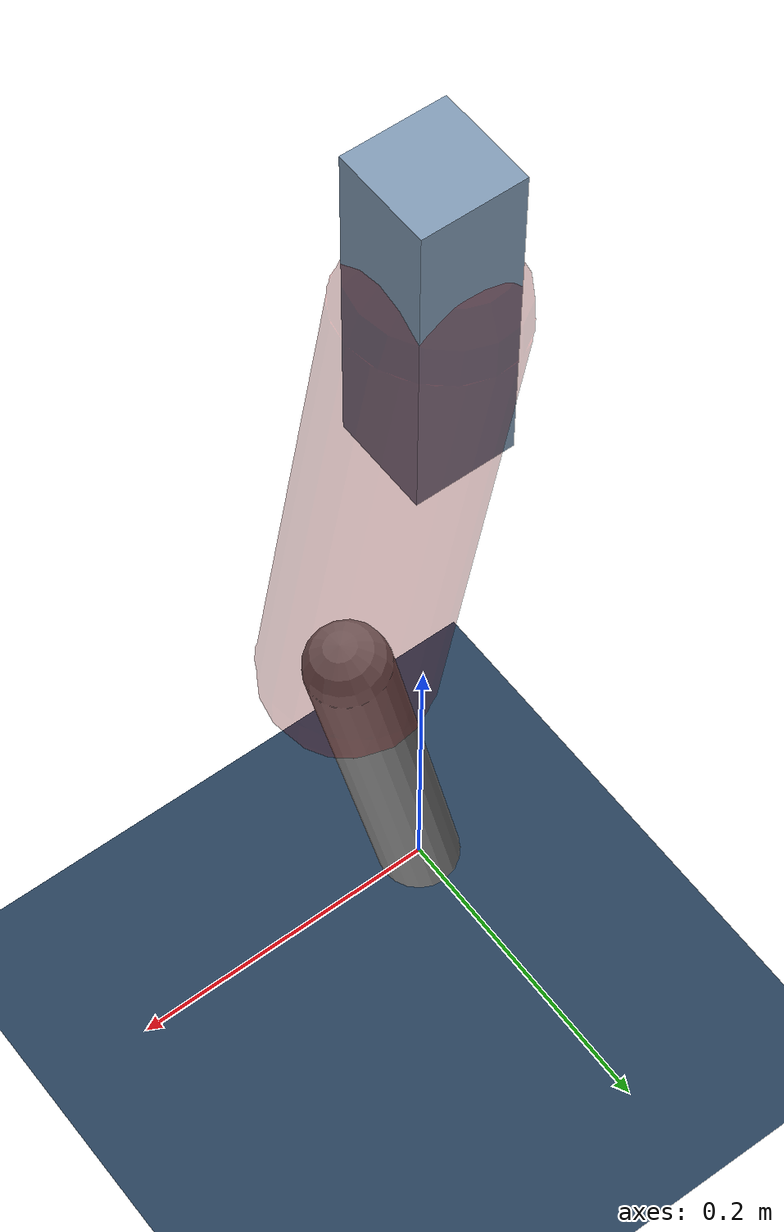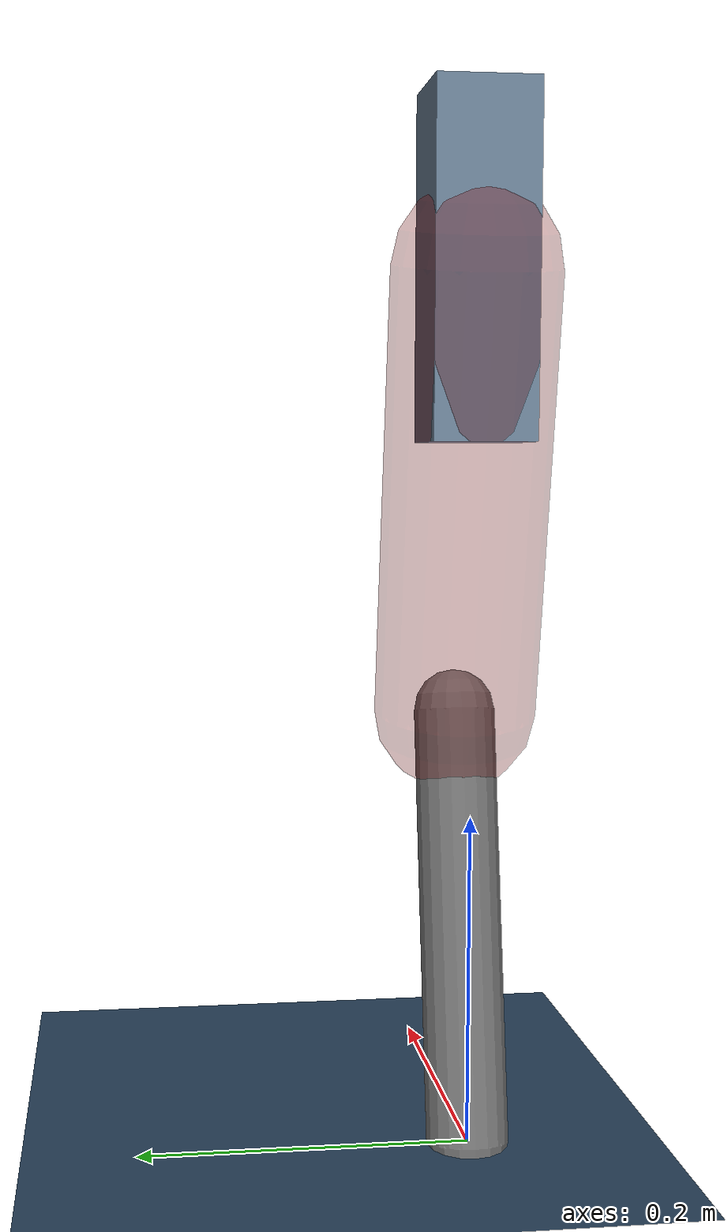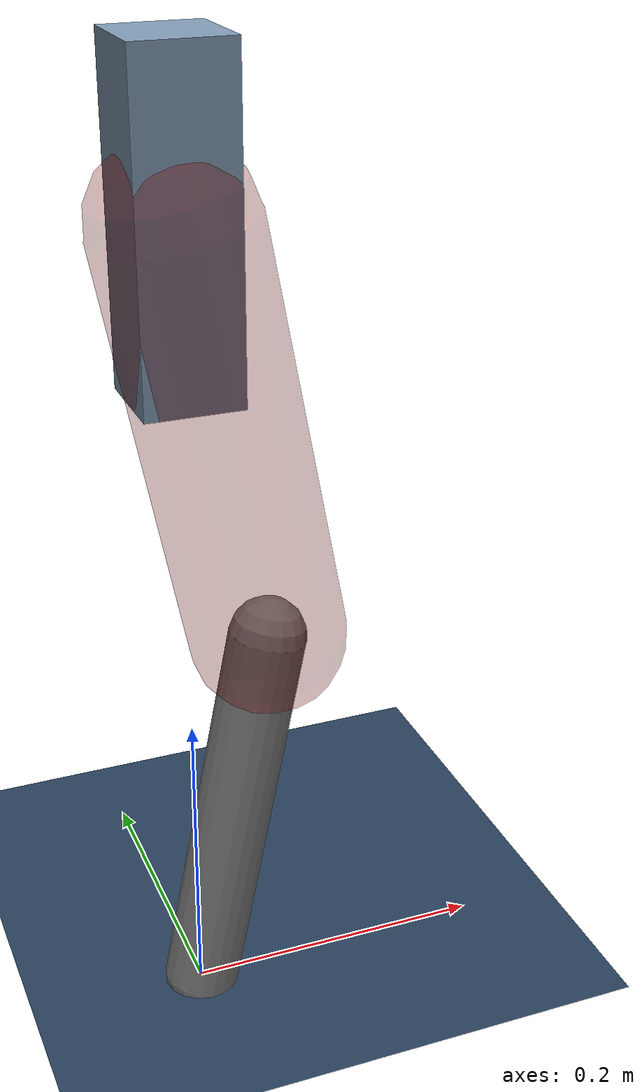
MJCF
<mujoco model="Hopper2D">
	<compiler inertiafromgeom="true" angle="radian" />
	<option timestep="0.001" integrator="implicit" cone="elliptic" solver="Newton" tolerance="1e-10" />

	<default>
		<geom contype="1" conaffinity="1" condim="3" friction="2 0.005 0.0001" solref="0.005 1" />
		<joint limited="true" damping="0.1" />
	</default>

	<asset>
		<texture name="skybox" type="skybox" builtin="gradient" rgb1=".4 .6 .8" rgb2="0 0 0" width="800" height="800" />
		<texture name="grid" type="2d" builtin="checker" rgb1=".1 .2 .3" rgb2=".2 .3 .4" width="300" height="300" mark="edge" markrgb=".2 .3 .4" />
		<material name="ground" texture="grid" texrepeat="1 1" texuniform="true" reflectance="0.1" />
		<material name="leg" rgba="0.5 0.6 0.7 1" />
	</asset>

	<worldbody>

		<geom name="floor" type="plane" size="5 5 0.25" material="ground" />

		<light directional="false" diffuse="0.8 0.8 0.8" specular="0.3 0.3 0.3" pos="0 0 2" dir="0 0 -1" />
		<light mode="targetbodycom" target="base" directional="false" diffuse="0.8 0.8 0.8" specular="0.3 0.3 0.3" pos="0 0 2" dir="0 0 -1" />

		<camera name="fixed" pos="0 -2 1" xyaxes="1 0 0 0 0 1" />
		<camera name="tracking" mode="trackcom" pos="0 -3 1" />

		<body name="root" pos="0 0 0.5219870976805515">
			<joint name="slide_x" type="slide" axis="1 0 0" range="-100 100" />
			<joint name="slide_z" type="slide" axis="0 0 1" range="0 10" />

			<body name="base" pos="0 0 0">
				<geom name="torso" type="box" size="0.03 0.03 0.1" mass="3.036" material="leg" />

				<body name="link1" pos="0 0 0" euler="0 1.3787925263186962 0">
					<joint type="hinge" axis="0 -1 0" pos="0 0 0" name="hinge1" limited="true" range="-3.14 3.14" stiffness="0" damping="0.1" />
					<geom name="thigh" type="capsule" fromto="0 0 0 0.2689790469053226 0 0" size="0.05" rgba="0.5 0 0 0.3" mass="0.9059455219538387" />

					<body name="link2" pos="0.2689790469053226 0 0" euler="0 0.3884228846793509 0">
						<joint type="hinge" axis="0 -1 0" pos="0 0 0" name="hinge2" limited="true" range="-3.14 3.14" stiffness="0" damping="0.1" />
						<geom name="shank" type="capsule" fromto="0 0 0 0.26300805077522893 0 0" size="0.025" mass="0.4532064406201831" />

					</body>
				</body>
			</body>
		</body>
	</worldbody>

	<actuator>
		<motor name="torque1" joint="hinge1" ctrlrange="-97.50676229694531 97.50676229694531" ctrllimited="true" gear="1" />
		<motor name="torque2" joint="hinge2" ctrlrange="-164.88967761932503 164.88967761932503" ctrllimited="true" gear="1" />
	</actuator>
</mujoco>
